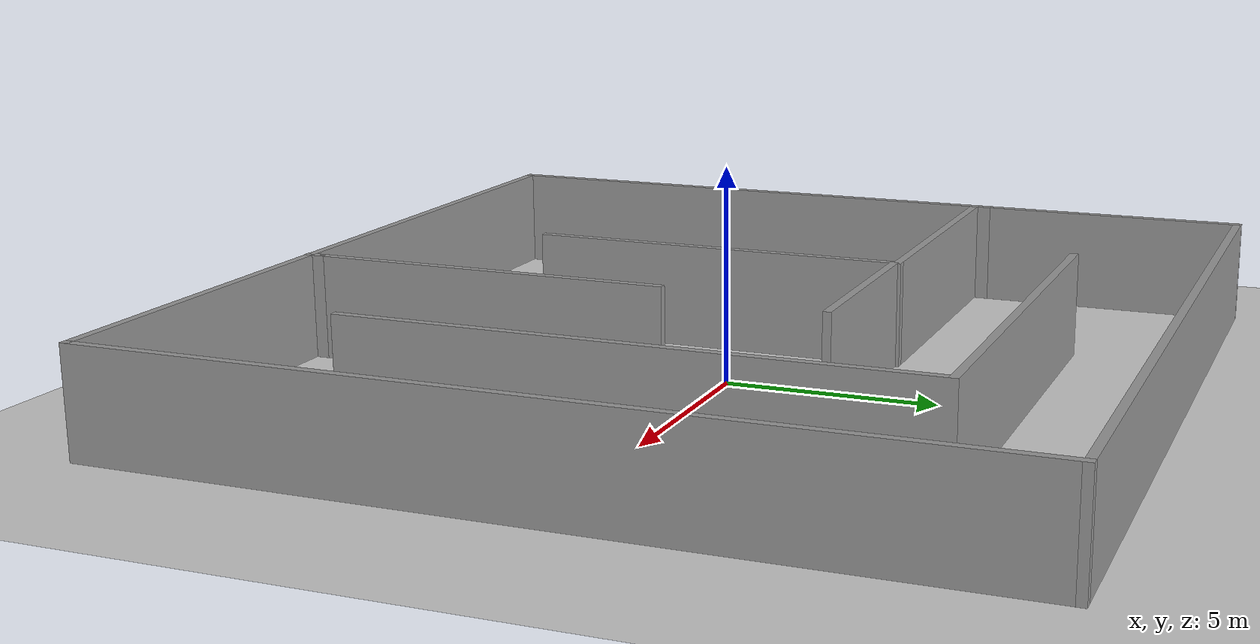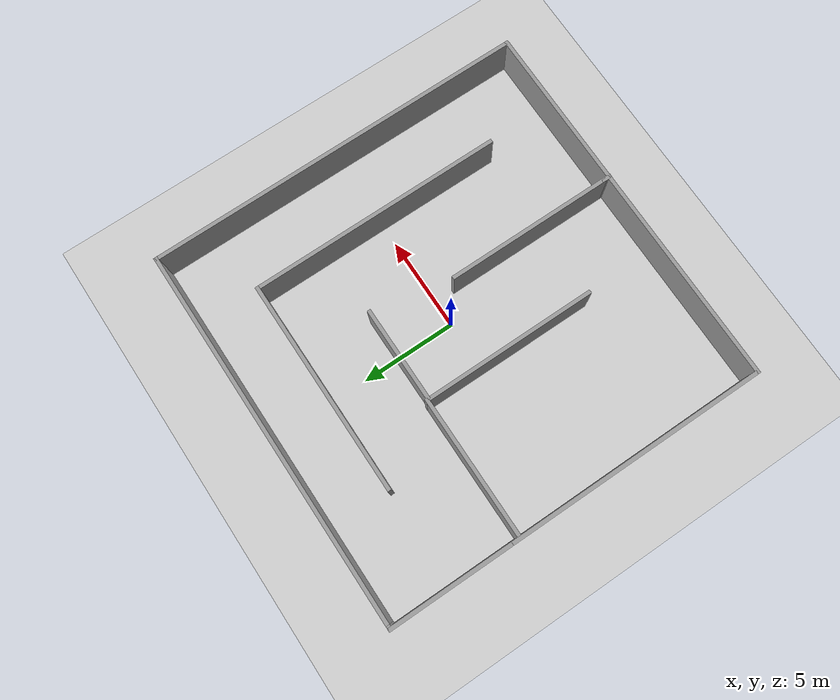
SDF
<sdf version="1.4">
 <world name="default">
  <light name="sun" type="directional">
   <pose>0 0 10 0 -0 0</pose>
   <diffuse>0.8 0.8 0.8 1</diffuse>
   <specular>0.2 0.2 0.2 1</specular>
   <attenuation>
    <range>1000</range>
    <constant>0.9</constant>
    <linear>0.01</linear>
    <quadratic>0.001</quadratic>
   </attenuation>
   <direction>-0.5 0.1 -0.9</direction>
  </light>
  <model name="ground_plane">
   <static>1</static>
   <link name="link">
    <collision name="collision">
     <geometry><plane><normal>0 0 1</normal><size>100 100</size></plane></geometry>
     <surface><friction><ode><mu>100</mu><mu2>50</mu2></ode></friction></surface>
    </collision>
    <visual name="visual">
     <cast_shadows>0</cast_shadows>
     <geometry><plane><normal>0 0 1</normal><size>100 100</size></plane></geometry>
     <material>
      <script><uri>file://media/materials/scripts/gazebo.material</uri><name>Gazebo/Grey</name></script>
     </material>
    </visual>
    <velocity_decay><linear>0</linear><angular>0</angular></velocity_decay>
   </link>
  </model>
  <model name="map1">
   <link name="Wall_16">
    <collision name="Wall_16_Collision">
     <geometry><box><size>13.8621 0.2 2.5</size></box></geometry>
     <pose>0 0 1.25 0 -0 0</pose>
    </collision>
    <visual name="Wall_16_Visual">
     <pose>0 0 1.25 0 -0 0</pose>
     <geometry><box><size>13.8621 0.2 2.5</size></box></geometry>
     <material>
      <script><uri>file://media/materials/scripts/gazebo.material</uri><name>Gazebo/Grey</name></script>
     </material>
    </visual>
    <velocity_decay><linear>0</linear><angular>0</angular></velocity_decay>
    <pose>-10.2372 -3.2818 0 0 0 -1.5708</pose>
   </link>
   <link name="Wall_17">
    <collision name="Wall_17_Collision">
     <geometry><box><size>20.4125 0.2 2.5</size></box></geometry>
     <pose>0 0 1.25 0 -0 0</pose>
    </collision>
    <visual name="Wall_17_Visual">
     <pose>0 0 1.25 0 -0 0</pose>
     <geometry><box><size>20.4125 0.2 2.5</size></box></geometry>
     <material>
      <script><uri>file://media/materials/scripts/gazebo.material</uri><name>Gazebo/Grey</name></script>
     </material>
    </visual>
    <velocity_decay><linear>0</linear><angular>0</angular></velocity_decay>
    <pose>-0.130941 -10.1129 0 0 -0 0</pose>
   </link>
   <link name="Wall_18">
    <collision name="Wall_18_Collision">
     <geometry><box><size>20.4125 0.2 2.5</size></box></geometry>
     <pose>0 0 1.25 0 -0 0</pose>
    </collision>
    <visual name="Wall_18_Visual">
     <pose>0 0 1.25 0 -0 0</pose>
     <geometry><box><size>20.4125 0.2 2.5</size></box></geometry>
     <material>
      <script><uri>file://media/materials/scripts/gazebo.material</uri><name>Gazebo/Grey</name></script>
     </material>
    </visual>
    <velocity_decay><linear>0</linear><angular>0</angular></velocity_decay>
    <pose>9.97529 -0.00663 0 0 -0 1.5708</pose>
   </link>
   <link name="Wall_19">
    <collision name="Wall_19_Collision">
     <geometry><box><size>20.3189 0.2 2.5</size></box></geometry>
     <pose>0 0 1.25 0 -0 0</pose>
    </collision>
    <visual name="Wall_19_Visual">
     <pose>0 0 1.25 0 -0 0</pose>
     <geometry><box><size>20.3189 0.2 2.5</size></box></geometry>
     <material>
      <script><uri>file://media/materials/scripts/gazebo.material</uri><name>Gazebo/Grey</name></script>
     </material>
    </visual>
    <velocity_decay><linear>0</linear><angular>0</angular></velocity_decay>
    <pose>-0.084153 10.0996 0 0 -0 3.14159</pose>
   </link>
   <link name="Wall_20">
    <collision name="Wall_20_Collision">
     <geometry><box><size>0.293576 0.2 2.5</size></box></geometry>
     <pose>0 0 1.25 0 -0 0</pose>
    </collision>
    <visual name="Wall_20_Visual">
     <pose>0 0 1.25 0 -0 0</pose>
     <geometry><box><size>0.293576 0.2 2.5</size></box></geometry>
     <material>
      <script><uri>file://media/materials/scripts/gazebo.material</uri><name>Gazebo/Grey</name></script>
     </material>
    </visual>
    <velocity_decay><linear>0</linear><angular>0</angular></velocity_decay>
    <pose>-10.1904 10.0996 0 0 -0 3.14159</pose>
   </link>
   <link name="Wall_21">
    <collision name="Wall_21_Collision">
     <geometry><box><size>6.75033 0.2 2.5</size></box></geometry>
     <pose>0 0 1.25 0 -0 0</pose>
    </collision>
    <visual name="Wall_21_Visual">
     <pose>0 0 1.25 0 -0 0</pose>
     <geometry><box><size>6.75033 0.2 2.5</size></box></geometry>
     <material>
      <script><uri>file://media/materials/scripts/gazebo.material</uri><name>Gazebo/Grey</name></script>
     </material>
    </visual>
    <velocity_decay><linear>0</linear><angular>0</angular></velocity_decay>
    <pose>-10.2372 6.82443 0 0 0 -1.5708</pose>
   </link>
   <link name="Wall_24">
    <collision name="Wall_24_Collision">
     <geometry><box><size>7.60473 0.2 2.5</size></box></geometry>
     <pose>0 0 1.25 0 -0 0</pose>
    </collision>
    <visual name="Wall_24_Visual">
     <pose>0 0 1.25 0 -0 0</pose>
     <geometry><box><size>7.60473 0.2 2.5</size></box></geometry>
     <material>
      <script><uri>file://media/materials/scripts/gazebo.material</uri><name>Gazebo/Grey</name></script>
     </material>
    </visual>
    <velocity_decay><linear>0</linear><angular>0</angular></velocity_decay>
    <pose>-6.50637 3.21336 0 0 -0 0</pose>
   </link>
   <link name="Wall_25">
    <collision name="Wall_25_Collision">
     <geometry><box><size>9.31351 0.2 2.5</size></box></geometry>
     <pose>0 0 1.25 0 -0 0</pose>
    </collision>
    <visual name="Wall_25_Visual">
     <pose>0 0 1.25 0 -0 0</pose>
     <geometry><box><size>9.31351 0.2 2.5</size></box></geometry>
     <material>
      <script><uri>file://media/materials/scripts/gazebo.material</uri><name>Gazebo/Grey</name></script>
     </material>
    </visual>
    <velocity_decay><linear>0</linear><angular>0</angular></velocity_decay>
    <pose>-2.80401 -1.34339 0 0 0 -1.5708</pose>
   </link>
   <link name="Wall_34">
    <collision name="Wall_34_Collision">
     <geometry><box><size>8.90666 0.2 2.5</size></box></geometry>
     <pose>0 0 1.25 0 -0 0</pose>
    </collision>
    <visual name="Wall_34_Visual">
     <pose>0 0 1.25 0 -0 0</pose>
     <geometry><box><size>8.90666 0.2 2.5</size></box></geometry>
     <material>
      <script><uri>file://media/materials/scripts/gazebo.material</uri><name>Gazebo/Grey</name></script>
     </material>
    </visual>
    <velocity_decay><linear>0</linear><angular>0</angular></velocity_decay>
    <pose>1.3459 -5.45261 0 0 0 -1.5708</pose>
   </link>
   <link name="Wall_35">
    <collision name="Wall_35_Collision">
     <geometry><box><size>0.525482 0.2 2.5</size></box></geometry>
     <pose>0 0 1.25 0 -0 0</pose>
    </collision>
    <visual name="Wall_35_Visual">
     <pose>0 0 1.25 0 -0 0</pose>
     <geometry><box><size>0.525482 0.2 2.5</size></box></geometry>
     <material>
      <script><uri>file://media/materials/scripts/gazebo.material</uri><name>Gazebo/Grey</name></script>
     </material>
    </visual>
    <velocity_decay><linear>0</linear><angular>0</angular></velocity_decay>
    <pose>1.3459 -9.96868 0 0 0 -1.5708</pose>
   </link>
   <link name="Wall_38">
    <collision name="Wall_38_Collision">
     <geometry><box><size>5.08224 0.2 2.5</size></box></geometry>
     <pose>0 0 1.25 0 -0 0</pose>
    </collision>
    <visual name="Wall_38_Visual">
     <pose>0 0 1.25 0 -0 0</pose>
     <geometry><box><size>5.08224 0.2 2.5</size></box></geometry>
     <material>
      <script><uri>file://media/materials/scripts/gazebo.material</uri><name>Gazebo/Grey</name></script>
     </material>
    </visual>
    <velocity_decay><linear>0</linear><angular>0</angular></velocity_decay>
    <pose>-0.281516 3.13199 0 0 -0 0</pose>
   </link>
   <link name="Wall_45">
    <collision name="Wall_45_Collision">
     <geometry><box><size>11.4291 0.2 2.5</size></box></geometry>
     <pose>0 0 1.25 0 -0 0</pose>
    </collision>
    <visual name="Wall_45_Visual">
     <pose>0 0 1.25 0 -0 0</pose>
     <geometry><box><size>11.4291 0.2 2.5</size></box></geometry>
     <material>
      <script><uri>file://media/materials/scripts/gazebo.material</uri><name>Gazebo/Grey</name></script>
     </material>
    </visual>
    <velocity_decay><linear>0</linear><angular>0</angular></velocity_decay>
    <pose>0.45082 6.87504 0 0 -0 0</pose>
   </link>
   <link name="Wall_46">
    <collision name="Wall_46_Collision">
     <geometry><box><size>13.4634 0.2 2.5</size></box></geometry>
     <pose>0 0 1.25 0 -0 0</pose>
    </collision>
    <visual name="Wall_46_Visual">
     <pose>0 0 1.25 0 -0 0</pose>
     <geometry><box><size>13.4634 0.2 2.5</size></box></geometry>
     <material>
      <script><uri>file://media/materials/scripts/gazebo.material</uri><name>Gazebo/Grey</name></script>
     </material>
    </visual>
    <velocity_decay><linear>0</linear><angular>0</angular></velocity_decay>
    <pose>6.06539 0.243333 0 0 0 -1.5708</pose>
   </link>
   <static>1</static>
  </model>
  <physics type="ode">
   <max_step_size>0.001</max_step_size>
   <real_time_factor>1</real_time_factor>
   <real_time_update_rate>1000</real_time_update_rate>
   <gravity>0 0 -9.8</gravity>
  </physics>
  <scene><ambient>0.4 0.4 0.4 1</ambient><background>0.7 0.7 0.7 1</background><shadows>1</shadows></scene>
  <spherical_coordinates>
   <surface_model>EARTH_WGS84</surface_model>
   <latitude_deg>0</latitude_deg>
   <longitude_deg>0</longitude_deg>
   <elevation>0</elevation>
   <heading_deg>0</heading_deg>
  </spherical_coordinates>
 </world>
</sdf>
